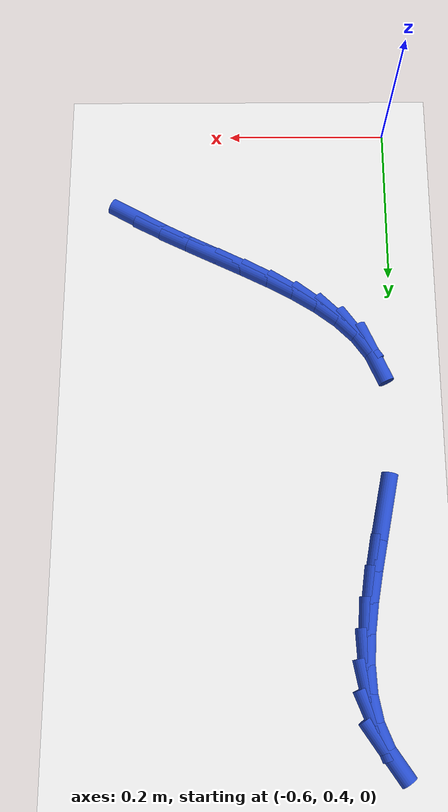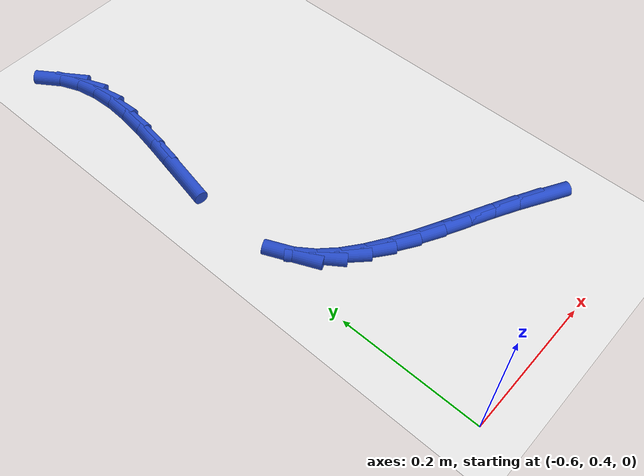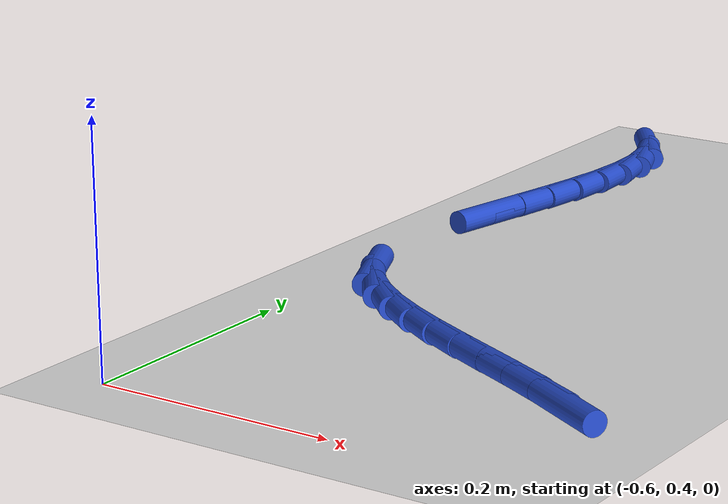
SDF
<sdf version="1.6">
 <world name="default">
  <model name="ground_plane">
   <static>1</static>
   <link name="link">
    <collision name="collision">
     <geometry><plane><normal>0 0 1</normal><size>100 100</size></plane></geometry>
     <surface><friction><ode><mu>100</mu><mu2>50</mu2></ode></friction></surface>
    </collision>
    <visual name="visual">
     <cast_shadows>0</cast_shadows>
     <geometry><plane><normal>0 0 1</normal><size>100 100</size></plane></geometry>
     <material>
      <script><uri>file://media/materials/scripts/gazebo.material</uri><name>Gazebo/WhiteGlow</name></script>
     </material>
    </visual>
   </link>
  </model>
  <model name="line">
   <link name="link_19">
    <pose>-0.28503742445180136 0.5233394618217735 0.01 0 1.57 -0.5070060092052388</pose>
    <collision name="collision">
     <geometry><cylinder><radius>0.01</radius><length>0.08</length></cylinder></geometry>
    </collision>
    <visual name="visual">
     <material>
      <script><name>Gazebo/Blue</name><uri>file://media/materials/scripts/gazebo.material</uri></script>
     </material>
     <geometry><cylinder><radius>0.01</radius><length>0.08</length></cylinder></geometry>
    </visual>
   </link>
   <link name="link_20">
    <pose>-0.31705734806420793 0.5411244326819367 0.01 0 1.57 -0.4723065836649267</pose>
    <collision name="collision">
     <geometry><cylinder><radius>0.01</radius><length>0.08</length></cylinder></geometry>
    </collision>
    <visual name="visual">
     <material>
      <script><name>Gazebo/Blue</name><uri>file://media/materials/scripts/gazebo.material</uri></script>
     </material>
     <geometry><cylinder><radius>0.01</radius><length>0.08</length></cylinder></geometry>
    </visual>
   </link>
   <link name="link_21">
    <pose>-0.35012993645930496 0.558020260844207 0.01 0 1.57 -0.44979225682347584</pose>
    <collision name="collision">
     <geometry><cylinder><radius>0.01</radius><length>0.08</length></cylinder></geometry>
    </collision>
    <visual name="visual">
     <material>
      <script><name>Gazebo/Blue</name><uri>file://media/materials/scripts/gazebo.material</uri></script>
     </material>
     <geometry><cylinder><radius>0.01</radius><length>0.08</length></cylinder></geometry>
    </visual>
   </link>
   <link name="link_22">
    <pose>-0.38378915678963865 0.5742708944822692 0.01 0 1.57 -0.4458269354989486</pose>
    <collision name="collision">
     <geometry><cylinder><radius>0.01</radius><length>0.08</length></cylinder></geometry>
    </collision>
    <visual name="visual">
     <material>
      <script><name>Gazebo/Blue</name><uri>file://media/materials/scripts/gazebo.material</uri></script>
     </material>
     <geometry><cylinder><radius>0.01</radius><length>0.08</length></cylinder></geometry>
    </visual>
   </link>
   <link name="link_23">
    <pose>-0.4173023155656656 0.5902874555181831 0.01 0 1.57 -0.46081837163876044</pose>
    <collision name="collision">
     <geometry><cylinder><radius>0.01</radius><length>0.08</length></cylinder></geometry>
    </collision>
    <visual name="visual">
     <material>
      <script><name>Gazebo/Blue</name><uri>file://media/materials/scripts/gazebo.material</uri></script>
     </material>
     <geometry><cylinder><radius>0.01</radius><length>0.08</length></cylinder></geometry>
    </visual>
   </link>
   <link name="link_24">
    <pose>-0.4499292942820158 0.6064857207331493 0.01 0 1.57 -0.4965153031194417</pose>
    <collision name="collision">
     <geometry><cylinder><radius>0.01</radius><length>0.08</length></cylinder></geometry>
    </collision>
    <visual name="visual">
     <material>
      <script><name>Gazebo/Blue</name><uri>file://media/materials/scripts/gazebo.material</uri></script>
     </material>
     <geometry><cylinder><radius>0.01</radius><length>0.08</length></cylinder></geometry>
    </visual>
   </link>
   <link name="link_25">
    <pose>-0.48092997443331903 0.6232814669083686 0.01 0 1.57 -0.5564011358206382</pose>
    <collision name="collision">
     <geometry><cylinder><radius>0.01</radius><length>0.08</length></cylinder></geometry>
    </collision>
    <visual name="visual">
     <material>
      <script><name>Gazebo/Blue</name><uri>file://media/materials/scripts/gazebo.material</uri></script>
     </material>
     <geometry><cylinder><radius>0.01</radius><length>0.08</length></cylinder></geometry>
    </visual>
   </link>
   <link name="link_26">
    <pose>-0.5095642375142055 0.6410904708250419 0.01 0 1.57 -0.6458096996146597</pose>
    <collision name="collision">
     <geometry><cylinder><radius>0.01</radius><length>0.08</length></cylinder></geometry>
    </collision>
    <visual name="visual">
     <material>
      <script><name>Gazebo/Blue</name><uri>file://media/materials/scripts/gazebo.material</uri></script>
     </material>
     <geometry><cylinder><radius>0.01</radius><length>0.08</length></cylinder></geometry>
    </visual>
   </link>
   <link name="link_27">
    <pose>-0.5350919650193056 0.6603285092643697 0.01 0 1.57 -0.7714100954514999</pose>
    <collision name="collision">
     <geometry><cylinder><radius>0.01</radius><length>0.08</length></cylinder></geometry>
    </collision>
    <visual name="visual">
     <material>
      <script><name>Gazebo/Blue</name><uri>file://media/materials/scripts/gazebo.material</uri></script>
     </material>
     <geometry><cylinder><radius>0.01</radius><length>0.08</length></cylinder></geometry>
    </visual>
   </link>
   <link name="link_28">
    <pose>-0.5567730384432488 0.681411359007553 0.01 0 1.57 -0.9387225401074779</pose>
    <collision name="collision">
     <geometry><cylinder><radius>0.01</radius><length>0.08</length></cylinder></geometry>
    </collision>
    <visual name="visual">
     <material>
      <script><name>Gazebo/Blue</name><uri>file://media/materials/scripts/gazebo.material</uri></script>
     </material>
     <geometry><cylinder><radius>0.01</radius><length>0.08</length></cylinder></geometry>
    </visual>
   </link>
   <link name="link_29">
    <pose>-0.5738673392806655 0.7047547968357923 0.01 0 1.57 -1.14550184339439</pose>
    <collision name="collision">
     <geometry><cylinder><radius>0.01</radius><length>0.08</length></cylinder></geometry>
    </collision>
    <visual name="visual">
     <material>
      <script><name>Gazebo/Blue</name><uri>file://media/materials/scripts/gazebo.material</uri></script>
     </material>
     <geometry><cylinder><radius>0.01</radius><length>0.08</length></cylinder></geometry>
    </visual>
   </link>
   <link name="link_35">
    <pose>-0.5812432254638826 0.8935217712708868 0.01 0 1.57 1.3716502108383468</pose>
    <collision name="collision">
     <geometry><cylinder><radius>0.01</radius><length>0.08</length></cylinder></geometry>
    </collision>
    <visual name="visual">
     <material>
      <script><name>Gazebo/Blue</name><uri>file://media/materials/scripts/gazebo.material</uri></script>
     </material>
     <geometry><cylinder><radius>0.01</radius><length>0.08</length></cylinder></geometry>
    </visual>
   </link>
   <link name="link_36">
    <pose>-0.5739628610494766 0.9295951063360577 0.01 0 1.57 1.3718863892041935</pose>
    <collision name="collision">
     <geometry><cylinder><radius>0.01</radius><length>0.08</length></cylinder></geometry>
    </collision>
    <visual name="visual">
     <material>
      <script><name>Gazebo/Blue</name><uri>file://media/materials/scripts/gazebo.material</uri></script>
     </material>
     <geometry><cylinder><radius>0.01</radius><length>0.08</length></cylinder></geometry>
    </visual>
   </link>
   <link name="link_37">
    <pose>-0.5666596757828386 0.9658256391080344 0.01 0 1.57 1.3940432788324997</pose>
    <collision name="collision">
     <geometry><cylinder><radius>0.01</radius><length>0.08</length></cylinder></geometry>
    </collision>
    <visual name="visual">
     <material>
      <script><name>Gazebo/Blue</name><uri>file://media/materials/scripts/gazebo.material</uri></script>
     </material>
     <geometry><cylinder><radius>0.01</radius><length>0.08</length></cylinder></geometry>
    </visual>
   </link>
   <link name="link_38">
    <pose>-0.5602380538900305 1.0017775407417546 0.01 0 1.57 1.4399921175468742</pose>
    <collision name="collision">
     <geometry><cylinder><radius>0.01</radius><length>0.08</length></cylinder></geometry>
    </collision>
    <visual name="visual">
     <material>
      <script><name>Gazebo/Blue</name><uri>file://media/materials/scripts/gazebo.material</uri></script>
     </material>
     <geometry><cylinder><radius>0.01</radius><length>0.08</length></cylinder></geometry>
    </visual>
   </link>
   <link name="link_39">
    <pose>-0.555602379597114 1.037014982392158 0.01 0 1.57 1.5137884964370198</pose>
    <collision name="collision">
     <geometry><cylinder><radius>0.01</radius><length>0.08</length></cylinder></geometry>
    </collision>
    <visual name="visual">
     <material>
      <script><name>Gazebo/Blue</name><uri>file://media/materials/scripts/gazebo.material</uri></script>
     </material>
     <geometry><cylinder><radius>0.01</radius><length>0.08</length></cylinder></geometry>
    </visual>
   </link>
   <link name="link_40">
    <pose>-0.5536570371301516 1.071102135214182 0.01 0 1.57 -1.520091485164762</pose>
    <collision name="collision">
     <geometry><cylinder><radius>0.01</radius><length>0.08</length></cylinder></geometry>
    </collision>
    <visual name="visual">
     <material>
      <script><name>Gazebo/Blue</name><uri>file://media/materials/scripts/gazebo.material</uri></script>
     </material>
     <geometry><cylinder><radius>0.01</radius><length>0.08</length></cylinder></geometry>
    </visual>
   </link>
   <link name="link_41">
    <pose>-0.5553064107152048 1.1036031703627656 0.01 0 1.57 -1.371740151712836</pose>
    <collision name="collision">
     <geometry><cylinder><radius>0.01</radius><length>0.08</length></cylinder></geometry>
    </collision>
    <visual name="visual">
     <material>
      <script><name>Gazebo/Blue</name><uri>file://media/materials/scripts/gazebo.material</uri></script>
     </material>
     <geometry><cylinder><radius>0.01</radius><length>0.08</length></cylinder></geometry>
    </visual>
   </link>
   <link name="link_42">
    <pose>-0.5614548845783358 1.134082258992847 0.01 0 1.57 -1.1798031312042947</pose>
    <collision name="collision">
     <geometry><cylinder><radius>0.01</radius><length>0.08</length></cylinder></geometry>
    </collision>
    <visual name="visual">
     <material>
      <script><name>Gazebo/Blue</name><uri>file://media/materials/scripts/gazebo.material</uri></script>
     </material>
     <geometry><cylinder><radius>0.01</radius><length>0.08</length></cylinder></geometry>
    </visual>
   </link>
   <link name="link_43">
    <pose>-0.5730058081417366 1.1621037630248632 0.01 0 1.57 -0.9656473261107855</pose>
    <collision name="collision">
     <geometry><cylinder><radius>0.01</radius><length>0.08</length></cylinder></geometry>
    </collision>
    <visual name="visual">
     <material>
      <script><name>Gazebo/Blue</name><uri>file://media/materials/scripts/gazebo.material</uri></script>
     </material>
     <geometry><cylinder><radius>0.01</radius><length>0.08</length></cylinder></geometry>
    </visual>
   </link>
  </model>
 </world>
</sdf>
